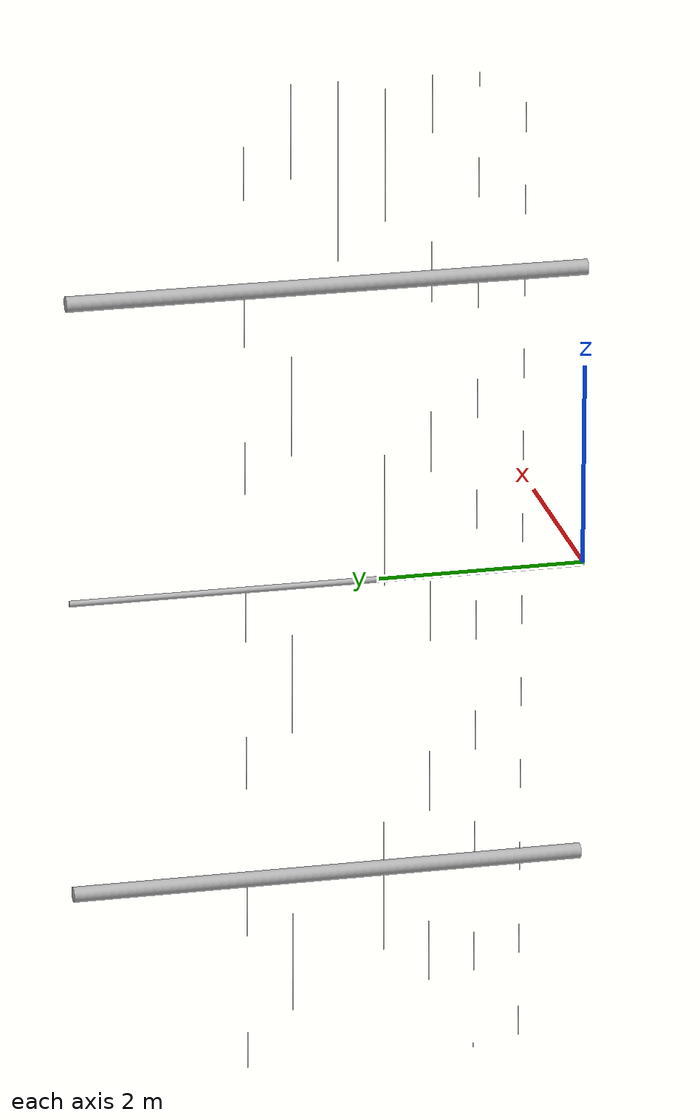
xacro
<?xml version="1.0"?>
<robot name="tree" xmlns:xacro="http://ros.org/wiki/xacro">

    <xacro:include filename="./macro/supports_and_post_base.urdf.xacro" />

    <xacro:arg name="namespace" default="" />
    <xacro:arg name="parent" default="world" />

    <xacro:supports_and_post
        namespace="$(arg namespace)"
        parent="$(arg parent)" >
        <origin rpy="0.0 0.0 0.0" xyz="0.0 0.0 0.0"/>
    </xacro:supports_and_post>

</robot>

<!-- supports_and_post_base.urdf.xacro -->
<robot name="supports_and_post" xmlns:xacro="http://ros.org/wiki/xacro">

    <xacro:macro name="supports_and_post" params="namespace parent *origin">
        <xacro:include filename="./macro/supports_and_post_macro.urdf.xacro"/> <!-- TODO: get absolute file paths? -->

        <xacro:supports_and_post_macro
            namespace="${namespace}"
            parent="${parent}" >
            <xacro:insert_block name="origin"/>
        </xacro:supports_and_post_macro>

    </xacro:macro>

</robot>

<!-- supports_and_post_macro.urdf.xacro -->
<robot name="supports_and_post" xmlns:xacro="http://ros.org/wiki/xacro">

    <xacro:macro name="supports_and_post_macro" params="
        namespace
        parent:=^|world
        *origin
        ">

        <xacro:property name="mass" value="8.0" />
        <xacro:property name="scale" value="1 1 1"/>

        <link name="world"/>

        <link name="${namespace}supports_and_post">
            <visual>
                <geometry>
                    <mesh filename="./meshes/supports_and_post/supports_and_post.obj" scale="${scale}"/>
                </geometry>
                <material name="LightGrey">
                    <color rgba="0.7 0.7 0.7 1.0"/>
                </material>
            </visual>
            <collision concave="true">
                <geometry>
                    <mesh filename="./meshes/supports_and_post/supports_and_post.obj" scale="${scale}"/>
                </geometry>
            </collision>
                <inertial>
                <mass value="${mass}"/>
                <xacro:insert_block name="origin"/>
                <inertia ixx="0.00443333156" ixy="0.0" ixz="0.0" iyy="0.00443333156" iyz="0.0" izz="0.0072"/>
            </inertial>
        </link>

        <joint name="${namespace}supports_and_post_joint" type="fixed">
            <parent link="${parent}"/>
            <child link="${namespace}supports_and_post"/>
            <origin rpy="0.0 0.0 0.0" xyz="0.0 0.0 0.0"/>
        </joint>

    </xacro:macro>
</robot>
